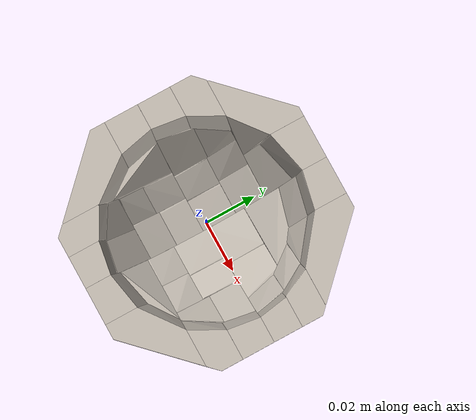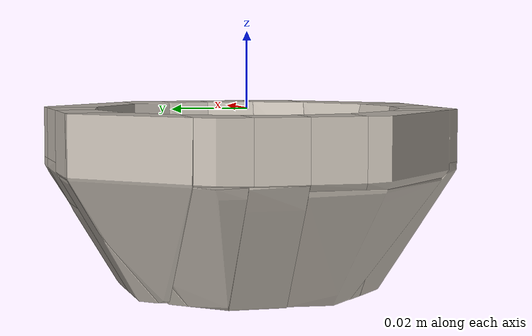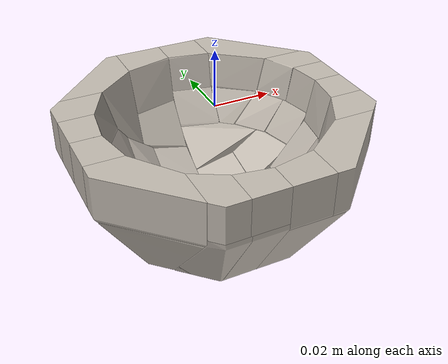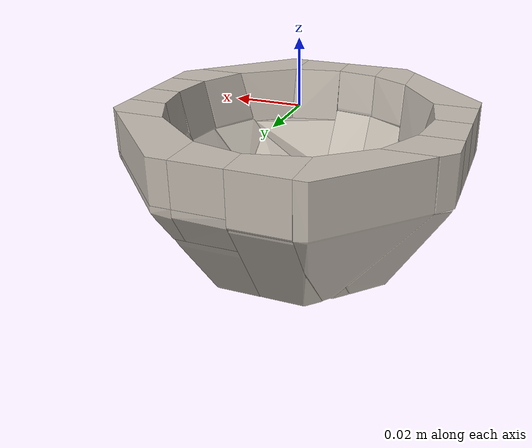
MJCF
<?xml version='1.0' encoding='utf-8'?>
<mujoco model="mortar">
  <asset>
    <mesh file="meshes/mortar_parts/Mortar_part_10.stl" name="mortar_mesh10" scale="1 1 1" />
    <mesh file="meshes/mortar_parts/Mortar_part_24.stl" name="mortar_mesh24" scale="1 1 1" />
    <mesh file="meshes/mortar_parts/Mortar_part_01.stl" name="mortar_mesh01" scale="1 1 1" />
    <mesh file="meshes/mortar_parts/Mortar_part_16.stl" name="mortar_mesh16" scale="1 1 1" />
    <mesh file="meshes/mortar_parts/Mortar_part_36.stl" name="mortar_mesh36" scale="1 1 1" />
    <mesh file="meshes/mortar_parts/Mortar_part_33.stl" name="mortar_mesh33" scale="1 1 1" />
    <mesh file="meshes/mortar_parts/Mortar_part_02.stl" name="mortar_mesh02" scale="1 1 1" />
    <mesh file="meshes/mortar_parts/Mortar_part_26.stl" name="mortar_mesh26" scale="1 1 1" />
    <mesh file="meshes/mortar_parts/Mortar_part_41.stl" name="mortar_mesh41" scale="1 1 1" />
    <mesh file="meshes/mortar_parts/Mortar_part_38.stl" name="mortar_mesh38" scale="1 1 1" />
    <mesh file="meshes/mortar_parts/Mortar_part_22.stl" name="mortar_mesh22" scale="1 1 1" />
    <mesh file="meshes/mortar_parts/Mortar_part_15.stl" name="mortar_mesh15" scale="1 1 1" />
    <mesh file="meshes/mortar_parts/Mortar_part_42.stl" name="mortar_mesh42" scale="1 1 1" />
    <mesh file="meshes/mortar_parts/Mortar_part_08.stl" name="mortar_mesh08" scale="1 1 1" />
    <mesh file="meshes/mortar_parts/Mortar_part_39.stl" name="mortar_mesh39" scale="1 1 1" />
    <mesh file="meshes/mortar_parts/Mortar_part_13.stl" name="mortar_mesh13" scale="1 1 1" />
    <mesh file="meshes/mortar_parts/Mortar_part_23.stl" name="mortar_mesh23" scale="1 1 1" />
    <mesh file="meshes/mortar_parts/Mortar_part_21.stl" name="mortar_mesh21" scale="1 1 1" />
    <mesh file="meshes/mortar_parts/Mortar_part_31.stl" name="mortar_mesh31" scale="1 1 1" />
    <mesh file="meshes/mortar_parts/Mortar_part_29.stl" name="mortar_mesh29" scale="1 1 1" />
    <mesh file="meshes/mortar_parts/Mortar_part_30.stl" name="mortar_mesh30" scale="1 1 1" />
    <mesh file="meshes/mortar_parts/Mortar_part_27.stl" name="mortar_mesh27" scale="1 1 1" />
    <mesh file="meshes/mortar_parts/Mortar_part_44.stl" name="mortar_mesh44" scale="1 1 1" />
    <mesh file="meshes/mortar_parts/Mortar_part_07.stl" name="mortar_mesh07" scale="1 1 1" />
    <mesh file="meshes/mortar_parts/Mortar_part_03.stl" name="mortar_mesh03" scale="1 1 1" />
    <mesh file="meshes/mortar_parts/Mortar_part_43.stl" name="mortar_mesh43" scale="1 1 1" />
    <mesh file="meshes/mortar_parts/Mortar_part_09.stl" name="mortar_mesh09" scale="1 1 1" />
    <mesh file="meshes/mortar_parts/Mortar_part_11.stl" name="mortar_mesh11" scale="1 1 1" />
    <mesh file="meshes/mortar_parts/Mortar_part_14.stl" name="mortar_mesh14" scale="1 1 1" />
    <mesh file="meshes/mortar_parts/Mortar_part_28.stl" name="mortar_mesh28" scale="1 1 1" />
    <mesh file="meshes/mortar_parts/Mortar_part_37.stl" name="mortar_mesh37" scale="1 1 1" />
    <mesh file="meshes/mortar_parts/Mortar_part_40.stl" name="mortar_mesh40" scale="1 1 1" />
    <mesh file="meshes/mortar_parts/Mortar_part_06.stl" name="mortar_mesh06" scale="1 1 1" />
    <mesh file="meshes/mortar_parts/Mortar_part_25.stl" name="mortar_mesh25" scale="1 1 1" />
    <mesh file="meshes/mortar_parts/Mortar_part_04.stl" name="mortar_mesh04" scale="1 1 1" />
    <mesh file="meshes/mortar_parts/Mortar_part_32.stl" name="mortar_mesh32" scale="1 1 1" />
    <mesh file="meshes/mortar_parts/Mortar_part_35.stl" name="mortar_mesh35" scale="1 1 1" />
    <mesh file="meshes/mortar_parts/Mortar_part_20.stl" name="mortar_mesh20" scale="1 1 1" />
    <mesh file="meshes/mortar_parts/Mortar_part_17.stl" name="mortar_mesh17" scale="1 1 1" />
    <mesh file="meshes/mortar_parts/Mortar_part_34.stl" name="mortar_mesh34" scale="1 1 1" />
    <mesh file="meshes/mortar_parts/Mortar_part_12.stl" name="mortar_mesh12" scale="1 1 1" />
    <mesh file="meshes/mortar_parts/Mortar_part_19.stl" name="mortar_mesh19" scale="1 1 1" />
    <mesh file="meshes/mortar_parts/Mortar_part_05.stl" name="mortar_mesh05" scale="1 1 1" />
    <mesh file="meshes/mortar_parts/Mortar_part_18.stl" name="mortar_mesh18" scale="1 1 1" />
    <texture file="../textures/brass-ambra.png" name="tex-brass-ambra" type="2d" />
    <material name="mortar" reflectance="0.7" texrepeat="15 15" texture="tex-brass-ambra" texuniform="true" />
  </asset>
  <worldbody>
    <body>
      <body name="object">
        <geom pos="0 0 0" mesh="mortar_mesh10" type="mesh" solimp="0.998 0.998 0.001" solref="0.0011" density="50" friction="0.95 0.3 0.1" material="mortar" group="0" condim="4" mass="1000" />
        <geom pos="0 0 0" mesh="mortar_mesh24" type="mesh" solimp="0.998 0.998 0.001" solref="0.0011" density="50" friction="0.95 0.3 0.1" material="mortar" group="0" condim="4" mass="1000" />
        <geom pos="0 0 0" mesh="mortar_mesh01" type="mesh" solimp="0.998 0.998 0.001" solref="0.0011" density="50" friction="0.95 0.3 0.1" material="mortar" group="0" condim="4" mass="1000" />
        <geom pos="0 0 0" mesh="mortar_mesh16" type="mesh" solimp="0.998 0.998 0.001" solref="0.0011" density="50" friction="0.95 0.3 0.1" material="mortar" group="0" condim="4" mass="1000" />
        <geom pos="0 0 0" mesh="mortar_mesh36" type="mesh" solimp="0.998 0.998 0.001" solref="0.0011" density="50" friction="0.95 0.3 0.1" material="mortar" group="0" condim="4" mass="1000" />
        <geom pos="0 0 0" mesh="mortar_mesh33" type="mesh" solimp="0.998 0.998 0.001" solref="0.0011" density="50" friction="0.95 0.3 0.1" material="mortar" group="0" condim="4" mass="1000" />
        <geom pos="0 0 0" mesh="mortar_mesh02" type="mesh" solimp="0.998 0.998 0.001" solref="0.0011" density="50" friction="0.95 0.3 0.1" material="mortar" group="0" condim="4" mass="1000" />
        <geom pos="0 0 0" mesh="mortar_mesh26" type="mesh" solimp="0.998 0.998 0.001" solref="0.0011" density="50" friction="0.95 0.3 0.1" material="mortar" group="0" condim="4" mass="1000" />
        <geom pos="0 0 0" mesh="mortar_mesh41" type="mesh" solimp="0.998 0.998 0.001" solref="0.0011" density="50" friction="0.95 0.3 0.1" material="mortar" group="0" condim="4" mass="1000" />
        <geom pos="0 0 0" mesh="mortar_mesh38" type="mesh" solimp="0.998 0.998 0.001" solref="0.0011" density="50" friction="0.95 0.3 0.1" material="mortar" group="0" condim="4" mass="1000" />
        <geom pos="0 0 0" mesh="mortar_mesh22" type="mesh" solimp="0.998 0.998 0.001" solref="0.0011" density="50" friction="0.95 0.3 0.1" material="mortar" group="0" condim="4" mass="1000" />
        <geom pos="0 0 0" mesh="mortar_mesh15" type="mesh" solimp="0.998 0.998 0.001" solref="0.0011" density="50" friction="0.95 0.3 0.1" material="mortar" group="0" condim="4" mass="1000" />
        <geom pos="0 0 0" mesh="mortar_mesh42" type="mesh" solimp="0.998 0.998 0.001" solref="0.0011" density="50" friction="0.95 0.3 0.1" material="mortar" group="0" condim="4" mass="1000" />
        <geom pos="0 0 0" mesh="mortar_mesh08" type="mesh" solimp="0.998 0.998 0.001" solref="0.0011" density="50" friction="0.95 0.3 0.1" material="mortar" group="0" condim="4" mass="1000" />
        <geom pos="0 0 0" mesh="mortar_mesh39" type="mesh" solimp="0.998 0.998 0.001" solref="0.0011" density="50" friction="0.95 0.3 0.1" material="mortar" group="0" condim="4" mass="1000" />
        <geom pos="0 0 0" mesh="mortar_mesh13" type="mesh" solimp="0.998 0.998 0.001" solref="0.0011" density="50" friction="0.95 0.3 0.1" material="mortar" group="0" condim="4" mass="1000" />
        <geom pos="0 0 0" mesh="mortar_mesh23" type="mesh" solimp="0.998 0.998 0.001" solref="0.0011" density="50" friction="0.95 0.3 0.1" material="mortar" group="0" condim="4" mass="1000" />
        <geom pos="0 0 0" mesh="mortar_mesh21" type="mesh" solimp="0.998 0.998 0.001" solref="0.0011" density="50" friction="0.95 0.3 0.1" material="mortar" group="0" condim="4" mass="1000" />
        <geom pos="0 0 0" mesh="mortar_mesh31" type="mesh" solimp="0.998 0.998 0.001" solref="0.0011" density="50" friction="0.95 0.3 0.1" material="mortar" group="0" condim="4" mass="1000" />
        <geom pos="0 0 0" mesh="mortar_mesh29" type="mesh" solimp="0.998 0.998 0.001" solref="0.0011" density="50" friction="0.95 0.3 0.1" material="mortar" group="0" condim="4" mass="1000" />
        <geom pos="0 0 0" mesh="mortar_mesh30" type="mesh" solimp="0.998 0.998 0.001" solref="0.0011" density="50" friction="0.95 0.3 0.1" material="mortar" group="0" condim="4" mass="1000" />
        <geom pos="0 0 0" mesh="mortar_mesh27" type="mesh" solimp="0.998 0.998 0.001" solref="0.0011" density="50" friction="0.95 0.3 0.1" material="mortar" group="0" condim="4" mass="1000" />
        <geom pos="0 0 0" mesh="mortar_mesh44" type="mesh" solimp="0.998 0.998 0.001" solref="0.0011" density="50" friction="0.95 0.3 0.1" material="mortar" group="0" condim="4" mass="1000" />
        <geom pos="0 0 0" mesh="mortar_mesh07" type="mesh" solimp="0.998 0.998 0.001" solref="0.0011" density="50" friction="0.95 0.3 0.1" material="mortar" group="0" condim="4" mass="1000" />
        <geom pos="0 0 0" mesh="mortar_mesh03" type="mesh" solimp="0.998 0.998 0.001" solref="0.0011" density="50" friction="0.95 0.3 0.1" material="mortar" group="0" condim="4" mass="1000" />
        <geom pos="0 0 0" mesh="mortar_mesh43" type="mesh" solimp="0.998 0.998 0.001" solref="0.0011" density="50" friction="0.95 0.3 0.1" material="mortar" group="0" condim="4" mass="1000" />
        <geom pos="0 0 0" mesh="mortar_mesh09" type="mesh" solimp="0.998 0.998 0.001" solref="0.0011" density="50" friction="0.95 0.3 0.1" material="mortar" group="0" condim="4" mass="1000" />
        <geom pos="0 0 0" mesh="mortar_mesh11" type="mesh" solimp="0.998 0.998 0.001" solref="0.0011" density="50" friction="0.95 0.3 0.1" material="mortar" group="0" condim="4" mass="1000" />
        <geom pos="0 0 0" mesh="mortar_mesh14" type="mesh" solimp="0.998 0.998 0.001" solref="0.0011" density="50" friction="0.95 0.3 0.1" material="mortar" group="0" condim="4" mass="1000" />
        <geom pos="0 0 0" mesh="mortar_mesh28" type="mesh" solimp="0.998 0.998 0.001" solref="0.0011" density="50" friction="0.95 0.3 0.1" material="mortar" group="0" condim="4" mass="1000" />
        <geom pos="0 0 0" mesh="mortar_mesh37" type="mesh" solimp="0.998 0.998 0.001" solref="0.0011" density="50" friction="0.95 0.3 0.1" material="mortar" group="0" condim="4" mass="1000" />
        <geom pos="0 0 0" mesh="mortar_mesh40" type="mesh" solimp="0.998 0.998 0.001" solref="0.0011" density="50" friction="0.95 0.3 0.1" material="mortar" group="0" condim="4" mass="1000" />
        <geom pos="0 0 0" mesh="mortar_mesh06" type="mesh" solimp="0.998 0.998 0.001" solref="0.0011" density="50" friction="0.95 0.3 0.1" material="mortar" group="0" condim="4" mass="1000" />
        <geom pos="0 0 0" mesh="mortar_mesh25" type="mesh" solimp="0.998 0.998 0.001" solref="0.0011" density="50" friction="0.95 0.3 0.1" material="mortar" group="0" condim="4" mass="1000" />
        <geom pos="0 0 0" mesh="mortar_mesh04" type="mesh" solimp="0.998 0.998 0.001" solref="0.0011" density="50" friction="0.95 0.3 0.1" material="mortar" group="0" condim="4" mass="1000" />
        <geom pos="0 0 0" mesh="mortar_mesh32" type="mesh" solimp="0.998 0.998 0.001" solref="0.0011" density="50" friction="0.95 0.3 0.1" material="mortar" group="0" condim="4" mass="1000" />
        <geom pos="0 0 0" mesh="mortar_mesh35" type="mesh" solimp="0.998 0.998 0.001" solref="0.0011" density="50" friction="0.95 0.3 0.1" material="mortar" group="0" condim="4" mass="1000" />
        <geom pos="0 0 0" mesh="mortar_mesh20" type="mesh" solimp="0.998 0.998 0.001" solref="0.0011" density="50" friction="0.95 0.3 0.1" material="mortar" group="0" condim="4" mass="1000" />
        <geom pos="0 0 0" mesh="mortar_mesh17" type="mesh" solimp="0.998 0.998 0.001" solref="0.0011" density="50" friction="0.95 0.3 0.1" material="mortar" group="0" condim="4" mass="1000" />
        <geom pos="0 0 0" mesh="mortar_mesh34" type="mesh" solimp="0.998 0.998 0.001" solref="0.0011" density="50" friction="0.95 0.3 0.1" material="mortar" group="0" condim="4" mass="1000" />
        <geom pos="0 0 0" mesh="mortar_mesh12" type="mesh" solimp="0.998 0.998 0.001" solref="0.0011" density="50" friction="0.95 0.3 0.1" material="mortar" group="0" condim="4" mass="1000" />
        <geom pos="0 0 0" mesh="mortar_mesh19" type="mesh" solimp="0.998 0.998 0.001" solref="0.0011" density="50" friction="0.95 0.3 0.1" material="mortar" group="0" condim="4" mass="1000" />
        <geom pos="0 0 0" mesh="mortar_mesh05" type="mesh" solimp="0.998 0.998 0.001" solref="0.0011" density="50" friction="0.95 0.3 0.1" material="mortar" group="0" condim="4" mass="1000" />
        <geom pos="0 0 0" mesh="mortar_mesh18" type="mesh" solimp="0.998 0.998 0.001" solref="0.0011" density="50" friction="0.95 0.3 0.1" material="mortar" group="0" condim="4" mass="1000" />
      </body>
      <site rgba="0 0 0 0" size="0.005" pos="0 0 -0.045" name="bottom_site" />
      <site rgba="0 0 0 0" size="0.005" pos="0 0 0.03" name="top_site" />
      <site rgba="0 0 0 0" size="0.005" pos="0.03 0.03 0" name="horizontal_radius_site" />
    </body>
  </worldbody>
</mujoco>
